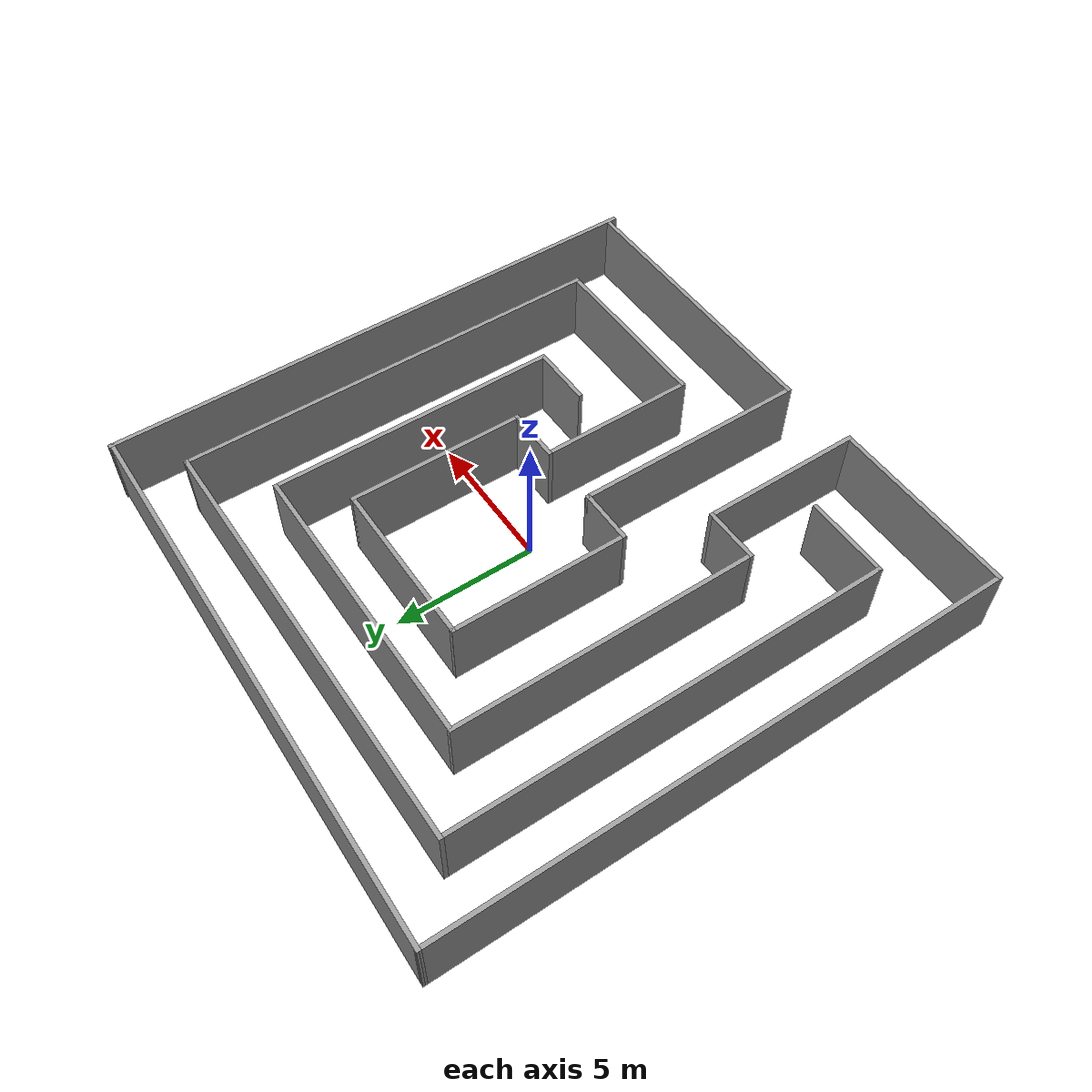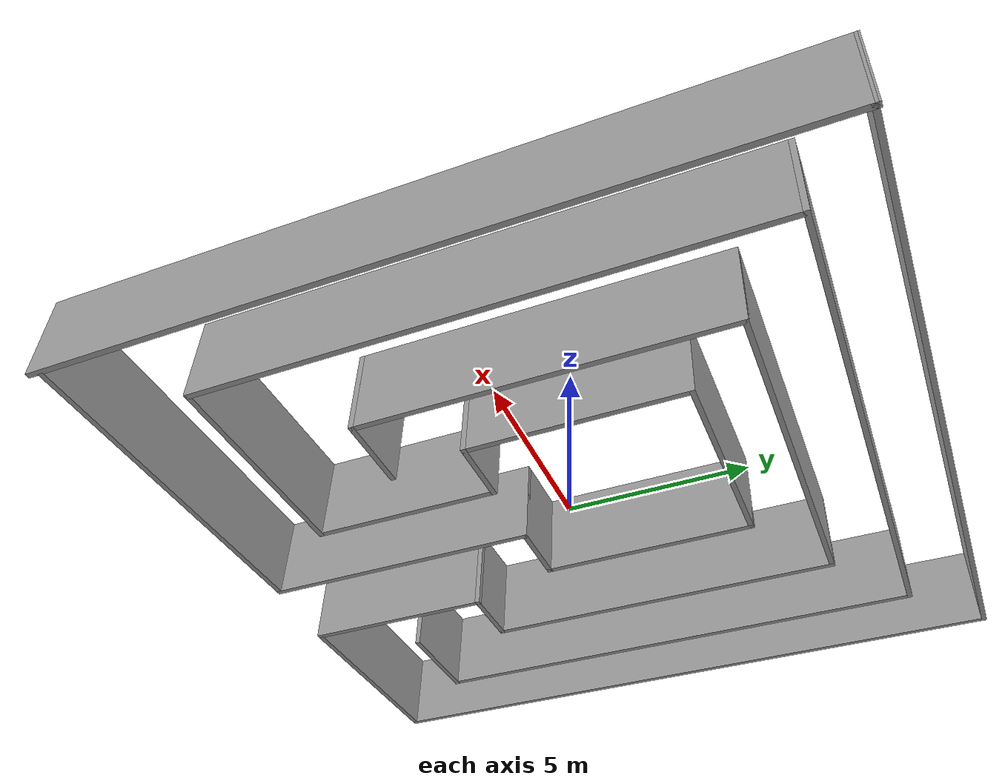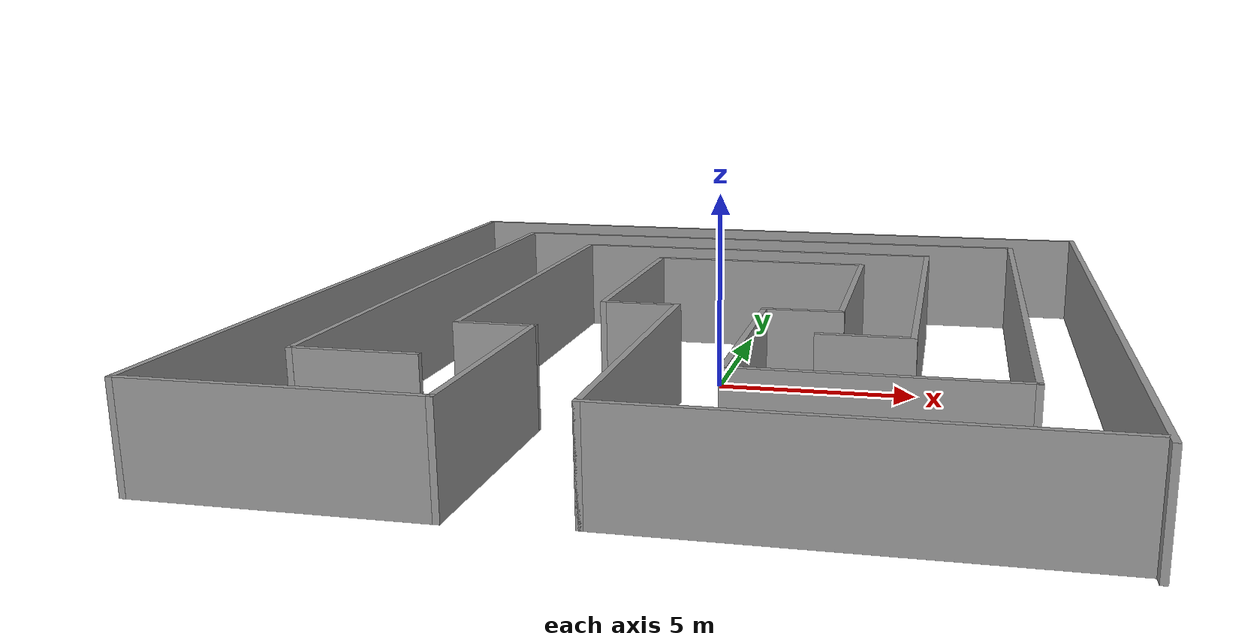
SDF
<?xml version='1.0'?>
<sdf version='1.7'>
  <model name='maze1'>
    <pose>-0.309968 0.039657 0 0 -0 0</pose>
    <link name='Wall_12'>
      <collision name='Wall_12_Collision'>
        <geometry>
          <box>
            <size>20 0.15 2.5</size>
          </box>
        </geometry>
        <pose>0 0 1.25 0 -0 0</pose>
      </collision>
      <visual name='Wall_12_Visual'>
        <pose>0 0 1.25 0 -0 0</pose>
        <geometry>
          <box>
            <size>20 0.15 2.5</size>
          </box>
        </geometry>
        <material>
          <script>
            <uri>file://media/materials/scripts/gazebo.material</uri>
            <name>Gazebo/Grey</name>
          </script>
          <ambient>1 1 1 1</ambient>
        </material>
        <meta>
          <layer>0</layer>
        </meta>
      </visual>
      <pose>9.76217 -0.140191 0 0 -0 1.5708</pose>
    </link>
    <link name='Wall_13'>
      <collision name='Wall_13_Collision'>
        <geometry>
          <box>
            <size>19.677 0.15 2.5</size>
          </box>
        </geometry>
        <pose>0 0 1.25 0 -0 0</pose>
      </collision>
      <visual name='Wall_13_Visual'>
        <pose>0 0 1.25 0 -0 0</pose>
        <geometry>
          <box>
            <size>19.677 0.15 2.5</size>
          </box>
        </geometry>
        <material>
          <script>
            <uri>file://media/materials/scripts/gazebo.material</uri>
            <name>Gazebo/Grey</name>
          </script>
          <ambient>1 1 1 1</ambient>
        </material>
        <meta>
          <layer>0</layer>
        </meta>
      </visual>
      <pose>0 9.90112 0 0 -0 3.12491</pose>
    </link>
    <link name='Wall_14'>
      <collision name='Wall_14_Collision'>
        <geometry>
          <box>
            <size>20.25 0.15 2.5</size>
          </box>
        </geometry>
        <pose>0 0 1.25 0 -0 0</pose>
      </collision>
      <visual name='Wall_14_Visual'>
        <pose>0 0 1.25 0 -0 0</pose>
        <geometry>
          <box>
            <size>20.25 0.15 2.5</size>
          </box>
        </geometry>
        <material>
          <script>
            <uri>file://media/materials/scripts/gazebo.material</uri>
            <name>Gazebo/Grey</name>
          </script>
          <ambient>1 1 1 1</ambient>
        </material>
        <meta>
          <layer>0</layer>
        </meta>
      </visual>
      <pose>-9.76217 0.013952 0 0 -0 -1.5708</pose>
    </link>
    <link name='Wall_30'>
      <collision name='Wall_30_Collision'>
        <geometry>
          <box>
            <size>6.25 0.15 2.5</size>
          </box>
        </geometry>
        <pose>0 0 1.25 0 -0 0</pose>
      </collision>
      <visual name='Wall_30_Visual'>
        <pose>0 0 1.25 0 -0 0</pose>
        <geometry>
          <box>
            <size>6.25 0.15 2.5</size>
          </box>
        </geometry>
        <material>
          <script>
            <uri>file://media/materials/scripts/gazebo.material</uri>
            <name>Gazebo/Grey</name>
          </script>
          <ambient>1 1 1 1</ambient>
        </material>
        <meta>
          <layer>0</layer>
        </meta>
      </visual>
      <pose>-2.29815 1.35818 0 0 -0 1.5708</pose>
    </link>
    <link name='Wall_31'>
      <collision name='Wall_31_Collision'>
        <geometry>
          <box>
            <size>6 0.15 2.5</size>
          </box>
        </geometry>
        <pose>0 0 1.25 0 -0 0</pose>
      </collision>
      <visual name='Wall_31_Visual'>
        <pose>0 0 1.25 0 -0 0</pose>
        <geometry>
          <box>
            <size>6 0.15 2.5</size>
          </box>
        </geometry>
        <material>
          <script>
            <uri>file://media/materials/scripts/gazebo.material</uri>
            <name>Gazebo/Grey</name>
          </script>
          <ambient>1 1 1 1</ambient>
        </material>
        <meta>
          <layer>0</layer>
        </meta>
      </visual>
      <pose>0.626847 4.40818 0 0 -0 0</pose>
    </link>
    <link name='Wall_32'>
      <collision name='Wall_32_Collision'>
        <geometry>
          <box>
            <size>6.25 0.15 2.5</size>
          </box>
        </geometry>
        <pose>0 0 1.25 0 -0 0</pose>
      </collision>
      <visual name='Wall_32_Visual'>
        <pose>0 0 1.25 0 -0 0</pose>
        <geometry>
          <box>
            <size>6.25 0.15 2.5</size>
          </box>
        </geometry>
        <material>
          <script>
            <uri>file://media/materials/scripts/gazebo.material</uri>
            <name>Gazebo/Grey</name>
          </script>
          <ambient>1 1 1 1</ambient>
        </material>
        <meta>
          <layer>0</layer>
        </meta>
      </visual>
      <pose>3.55185 1.35818 0 0 -0 -1.5708</pose>
    </link>
    <link name='Wall_33'>
      <collision name='Wall_33_Collision'>
        <geometry>
          <box>
            <size>2 0.15 2.5</size>
          </box>
        </geometry>
        <pose>0 0 1.25 0 -0 0</pose>
      </collision>
      <visual name='Wall_33_Visual'>
        <pose>0 0 1.25 0 -0 0</pose>
        <geometry>
          <box>
            <size>2 0.15 2.5</size>
          </box>
        </geometry>
        <material>
          <script>
            <uri>file://media/materials/scripts/gazebo.material</uri>
            <name>Gazebo/Grey</name>
          </script>
          <ambient>1 1 1 1</ambient>
        </material>
        <meta>
          <layer>0</layer>
        </meta>
      </visual>
      <pose>2.62685 -1.69182 0 0 -0 3.14159</pose>
    </link>
    <link name='Wall_35'>
      <collision name='Wall_35_Collision'>
        <geometry>
          <box>
            <size>2 0.15 2.5</size>
          </box>
        </geometry>
        <pose>0 0 1.25 0 -0 0</pose>
      </collision>
      <visual name='Wall_35_Visual'>
        <pose>0 0 1.25 0 -0 0</pose>
        <geometry>
          <box>
            <size>2 0.15 2.5</size>
          </box>
        </geometry>
        <material>
          <script>
            <uri>file://media/materials/scripts/gazebo.material</uri>
            <name>Gazebo/Grey</name>
          </script>
          <ambient>1 1 1 1</ambient>
        </material>
        <meta>
          <layer>0</layer>
        </meta>
      </visual>
      <pose>-1.37315 -1.69182 0 0 -0 0</pose>
    </link>
    <link name='Wall_36'>
      <collision name='Wall_36_Collision'>
        <geometry>
          <box>
            <size>8.25 0.15 2.5</size>
          </box>
        </geometry>
        <pose>0 0 1.25 0 -0 0</pose>
      </collision>
      <visual name='Wall_36_Visual'>
        <pose>0 0 1.25 0 -0 0</pose>
        <geometry>
          <box>
            <size>8.25 0.15 2.5</size>
          </box>
        </geometry>
        <material>
          <script>
            <uri>file://media/materials/scripts/gazebo.material</uri>
            <name>Gazebo/Grey</name>
          </script>
          <ambient>1 1 1 1</ambient>
        </material>
        <meta>
          <layer>0</layer>
        </meta>
      </visual>
      <pose>-0.448153 -5.74182 0 0 -0 -1.5708</pose>
    </link>
    <link name='Wall_38'>
      <collision name='Wall_38_Collision'>
        <geometry>
          <box>
            <size>10.25 0.15 2.5</size>
          </box>
        </geometry>
        <pose>0 0 1.25 0 -0 0</pose>
      </collision>
      <visual name='Wall_38_Visual'>
        <pose>0 0 1.25 0 -0 0</pose>
        <geometry>
          <box>
            <size>10.25 0.15 2.5</size>
          </box>
        </geometry>
        <material>
          <script>
            <uri>file://media/materials/scripts/gazebo.material</uri>
            <name>Gazebo/Grey</name>
          </script>
          <ambient>1 1 1 1</ambient>
        </material>
        <meta>
          <layer>0</layer>
        </meta>
      </visual>
      <pose>4.60185 -9.79182 0 0 -0 0</pose>
    </link>
    <link name='Wall_40'>
      <collision name='Wall_40_Collision'>
        <geometry>
          <box>
            <size>6.75 0.15 2.5</size>
          </box>
        </geometry>
        <pose>0 0 1.25 0 -0 0</pose>
      </collision>
      <visual name='Wall_40_Visual'>
        <pose>0 0 1.25 0 -0 0</pose>
        <geometry>
          <box>
            <size>6.75 0.15 2.5</size>
          </box>
        </geometry>
        <material>
          <script>
            <uri>file://media/materials/scripts/gazebo.material</uri>
            <name>Gazebo/Grey</name>
          </script>
          <ambient>1 1 1 1</ambient>
        </material>
        <meta>
          <layer>0</layer>
        </meta>
      </visual>
      <pose>-6.46217 -10.036 0 0 -0 0</pose>
    </link>
    <link name='Wall_42'>
      <collision name='Wall_42_Collision'>
        <geometry>
          <box>
            <size>5.75 0.15 2.5</size>
          </box>
        </geometry>
        <pose>0 0 1.25 0 -0 0</pose>
      </collision>
      <visual name='Wall_42_Visual'>
        <pose>0 0 1.25 0 -0 0</pose>
        <geometry>
          <box>
            <size>5.75 0.15 2.5</size>
          </box>
        </geometry>
        <material>
          <script>
            <uri>file://media/materials/scripts/gazebo.material</uri>
            <name>Gazebo/Grey</name>
          </script>
          <ambient>1 1 1 1</ambient>
        </material>
        <meta>
          <layer>0</layer>
        </meta>
      </visual>
      <pose>-3.16217 -7.23605 0 0 -0 1.5708</pose>
    </link>
    <link name='Wall_43'>
      <collision name='Wall_43_Collision'>
        <geometry>
          <box>
            <size>2 0.15 2.5</size>
          </box>
        </geometry>
        <pose>0 0 1.25 0 -0 0</pose>
      </collision>
      <visual name='Wall_43_Visual'>
        <pose>0 0 1.25 0 -0 0</pose>
        <geometry>
          <box>
            <size>2 0.15 2.5</size>
          </box>
        </geometry>
        <material>
          <script>
            <uri>file://media/materials/scripts/gazebo.material</uri>
            <name>Gazebo/Grey</name>
          </script>
          <ambient>1 1 1 1</ambient>
        </material>
        <meta>
          <layer>0</layer>
        </meta>
      </visual>
      <pose>-4.08717 -4.43605 0 0 -0 3.14159</pose>
    </link>
    <link name='Wall_44'>
      <collision name='Wall_44_Collision'>
        <geometry>
          <box>
            <size>10.75 0.15 2.5</size>
          </box>
        </geometry>
        <pose>0 0 1.25 0 -0 0</pose>
      </collision>
      <visual name='Wall_44_Visual'>
        <pose>0 0 1.25 0 -0 0</pose>
        <geometry>
          <box>
            <size>10.75 0.15 2.5</size>
          </box>
        </geometry>
        <material>
          <script>
            <uri>file://media/materials/scripts/gazebo.material</uri>
            <name>Gazebo/Grey</name>
          </script>
          <ambient>1 1 1 1</ambient>
        </material>
        <meta>
          <layer>0</layer>
        </meta>
      </visual>
      <pose>-5.01217 0.863952 0 0 -0 1.5708</pose>
    </link>
    <link name='Wall_45'>
      <collision name='Wall_45_Collision'>
        <geometry>
          <box>
            <size>10.5 0.15 2.5</size>
          </box>
        </geometry>
        <pose>0 0 1.25 0 -0 0</pose>
      </collision>
      <visual name='Wall_45_Visual'>
        <pose>0 0 1.25 0 -0 0</pose>
        <geometry>
          <box>
            <size>10.5 0.15 2.5</size>
          </box>
        </geometry>
        <material>
          <script>
            <uri>file://media/materials/scripts/gazebo.material</uri>
            <name>Gazebo/Grey</name>
          </script>
          <ambient>1 1 1 1</ambient>
        </material>
        <meta>
          <layer>0</layer>
        </meta>
      </visual>
      <pose>0.162834 6.16395 0 0 -0 0</pose>
    </link>
    <link name='Wall_46'>
      <collision name='Wall_46_Collision'>
        <geometry>
          <box>
            <size>10.25 0.15 2.5</size>
          </box>
        </geometry>
        <pose>0 0 1.25 0 -0 0</pose>
      </collision>
      <visual name='Wall_46_Visual'>
        <pose>0 0 1.25 0 -0 0</pose>
        <geometry>
          <box>
            <size>10.25 0.15 2.5</size>
          </box>
        </geometry>
        <material>
          <script>
            <uri>file://media/materials/scripts/gazebo.material</uri>
            <name>Gazebo/Grey</name>
          </script>
          <ambient>1 1 1 1</ambient>
        </material>
        <meta>
          <layer>0</layer>
        </meta>
      </visual>
      <pose>5.33783 1.11395 0 0 -0 -1.5708</pose>
    </link>
    <link name='Wall_47'>
      <collision name='Wall_47_Collision'>
        <geometry>
          <box>
            <size>2.25 0.15 2.5</size>
          </box>
        </geometry>
        <pose>0 0 1.25 0 -0 0</pose>
      </collision>
      <visual name='Wall_47_Visual'>
        <pose>0 0 1.25 0 -0 0</pose>
        <geometry>
          <box>
            <size>2.25 0.15 2.5</size>
          </box>
        </geometry>
        <material>
          <script>
            <uri>file://media/materials/scripts/gazebo.material</uri>
            <name>Gazebo/Grey</name>
          </script>
          <ambient>1 1 1 1</ambient>
        </material>
        <meta>
          <layer>0</layer>
        </meta>
      </visual>
      <pose>4.28783 -3.93605 0 0 -0 3.14159</pose>
    </link>
    <link name='Wall_49'>
      <collision name='Wall_49_Collision'>
        <geometry>
          <box>
            <size>5.5 0.15 2.5</size>
          </box>
        </geometry>
        <pose>0 0 1.25 0 -0 0</pose>
      </collision>
      <visual name='Wall_49_Visual'>
        <pose>0 0 1.25 0 -0 0</pose>
        <geometry>
          <box>
            <size>5.5 0.15 2.5</size>
          </box>
        </geometry>
        <material>
          <script>
            <uri>file://media/materials/scripts/gazebo.material</uri>
            <name>Gazebo/Grey</name>
          </script>
          <ambient>1 1 1 1</ambient>
        </material>
        <meta>
          <layer>0</layer>
        </meta>
      </visual>
      <pose>1.70185 -4.36682 0 0 -0 -1.5708</pose>
    </link>
    <link name='Wall_50'>
      <collision name='Wall_50_Collision'>
        <geometry>
          <box>
            <size>6.25 0.15 2.5</size>
          </box>
        </geometry>
        <pose>0 0 1.25 0 -0 0</pose>
      </collision>
      <visual name='Wall_50_Visual'>
        <pose>0 0 1.25 0 -0 0</pose>
        <geometry>
          <box>
            <size>6.25 0.15 2.5</size>
          </box>
        </geometry>
        <material>
          <script>
            <uri>file://media/materials/scripts/gazebo.material</uri>
            <name>Gazebo/Grey</name>
          </script>
          <ambient>1 1 1 1</ambient>
        </material>
        <meta>
          <layer>0</layer>
        </meta>
      </visual>
      <pose>4.75185 -7.04182 0 0 -0 0</pose>
    </link>
    <link name='Wall_51'>
      <collision name='Wall_51_Collision'>
        <geometry>
          <box>
            <size>15.25 0.15 2.5</size>
          </box>
        </geometry>
        <pose>0 0 1.25 0 -0 0</pose>
      </collision>
      <visual name='Wall_51_Visual'>
        <pose>0 0 1.25 0 -0 0</pose>
        <geometry>
          <box>
            <size>15.25 0.15 2.5</size>
          </box>
        </geometry>
        <material>
          <script>
            <uri>file://media/materials/scripts/gazebo.material</uri>
            <name>Gazebo/Grey</name>
          </script>
          <ambient>1 1 1 1</ambient>
        </material>
        <meta>
          <layer>0</layer>
        </meta>
      </visual>
      <pose>7.80185 0.508177 0 0 -0 1.5708</pose>
    </link>
    <link name='Wall_52'>
      <collision name='Wall_52_Collision'>
        <geometry>
          <box>
            <size>15.5 0.15 2.5</size>
          </box>
        </geometry>
        <pose>0 0 1.25 0 -0 0</pose>
      </collision>
      <visual name='Wall_52_Visual'>
        <pose>0 0 1.25 0 -0 0</pose>
        <geometry>
          <box>
            <size>15.5 0.15 2.5</size>
          </box>
        </geometry>
        <material>
          <script>
            <uri>file://media/materials/scripts/gazebo.material</uri>
            <name>Gazebo/Grey</name>
          </script>
          <ambient>1 1 1 1</ambient>
        </material>
        <meta>
          <layer>0</layer>
        </meta>
      </visual>
      <pose>0.126847 8.05818 0 0 -0 3.14159</pose>
    </link>
    <link name='Wall_53'>
      <collision name='Wall_53_Collision'>
        <geometry>
          <box>
            <size>15.5 0.15 2.5</size>
          </box>
        </geometry>
        <pose>0 0 1.25 0 -0 0</pose>
      </collision>
      <visual name='Wall_53_Visual'>
        <pose>0 0 1.25 0 -0 0</pose>
        <geometry>
          <box>
            <size>15.5 0.15 2.5</size>
          </box>
        </geometry>
        <material>
          <script>
            <uri>file://media/materials/scripts/gazebo.material</uri>
            <name>Gazebo/Grey</name>
          </script>
          <ambient>1 1 1 1</ambient>
        </material>
        <meta>
          <layer>0</layer>
        </meta>
      </visual>
      <pose>-7.54815 0.383177 0 0 -0 -1.5708</pose>
    </link>
    <link name='Wall_54'>
      <collision name='Wall_54_Collision'>
        <geometry>
          <box>
            <size>3 0.15 2.5</size>
          </box>
        </geometry>
        <pose>0 0 1.25 0 -0 0</pose>
      </collision>
      <visual name='Wall_54_Visual'>
        <pose>0 0 1.25 0 -0 0</pose>
        <geometry>
          <box>
            <size>3 0.15 2.5</size>
          </box>
        </geometry>
        <material>
          <script>
            <uri>file://media/materials/scripts/gazebo.material</uri>
            <name>Gazebo/Grey</name>
          </script>
          <ambient>1 1 1 1</ambient>
        </material>
        <meta>
          <layer>0</layer>
        </meta>
      </visual>
      <pose>-6.12315 -7.29182 0 0 -0 0</pose>
    </link>
    <static>1</static>
  </model>
</sdf>
